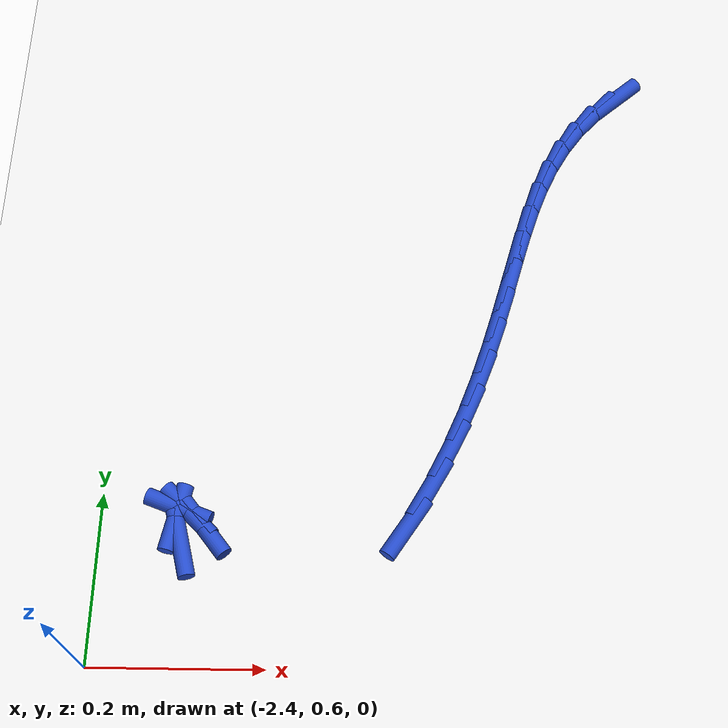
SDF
<sdf version="1.6">
 <world name="default">
  <model name="ground_plane">
   <static>1</static>
   <link name="link">
    <collision name="collision">
     <geometry><plane><normal>0 0 1</normal><size>100 100</size></plane></geometry>
     <surface><friction><ode><mu>100</mu><mu2>50</mu2></ode></friction></surface>
    </collision>
    <visual name="visual">
     <cast_shadows>0</cast_shadows>
     <geometry><plane><normal>0 0 1</normal><size>100 100</size></plane></geometry>
     <material>
      <script><uri>file://media/materials/scripts/gazebo.material</uri><name>Gazebo/WhiteGlow</name></script>
     </material>
    </visual>
   </link>
  </model>
  <model name="line">
   <link name="link_84">
    <pose>-1.7761245141381952 1.3592706370469525 0.01 0 1.57 0.7127917252627441</pose>
    <collision name="collision">
     <geometry><cylinder><radius>0.01</radius><length>0.08</length></cylinder></geometry>
    </collision>
    <visual name="visual">
     <material>
      <script><name>Gazebo/Blue</name><uri>file://media/materials/scripts/gazebo.material</uri></script>
     </material>
     <geometry><cylinder><radius>0.01</radius><length>0.08</length></cylinder></geometry>
    </visual>
   </link>
   <link name="link_85">
    <pose>-1.8041716083683887 1.3350268809052623 0.01 0 1.57 0.8358842722831661</pose>
    <collision name="collision">
     <geometry><cylinder><radius>0.01</radius><length>0.08</length></cylinder></geometry>
    </collision>
    <visual name="visual">
     <material>
      <script><name>Gazebo/Blue</name><uri>file://media/materials/scripts/gazebo.material</uri></script>
     </material>
     <geometry><cylinder><radius>0.01</radius><length>0.08</length></cylinder></geometry>
    </visual>
   </link>
   <link name="link_86">
    <pose>-1.8279495651309479 1.3087180884654763 0.01 0 1.57 0.953146820202422</pose>
    <collision name="collision">
     <geometry><cylinder><radius>0.01</radius><length>0.08</length></cylinder></geometry>
    </collision>
    <visual name="visual">
     <material>
      <script><name>Gazebo/Blue</name><uri>file://media/materials/scripts/gazebo.material</uri></script>
     </material>
     <geometry><cylinder><radius>0.01</radius><length>0.08</length></cylinder></geometry>
    </visual>
   </link>
   <link name="link_87">
    <pose>-1.8480587753543565 1.2804098691691266 0.01 0 1.57 1.0576609260138956</pose>
    <collision name="collision">
     <geometry><cylinder><radius>0.01</radius><length>0.08</length></cylinder></geometry>
    </collision>
    <visual name="visual">
     <material>
      <script><name>Gazebo/Blue</name><uri>file://media/materials/scripts/gazebo.material</uri></script>
     </material>
     <geometry><cylinder><radius>0.01</radius><length>0.08</length></cylinder></geometry>
    </visual>
   </link>
   <link name="link_88">
    <pose>-1.8650996299671 1.2501678324577463 0.01 0 1.57 1.1447542538550988</pose>
    <collision name="collision">
     <geometry><cylinder><radius>0.01</radius><length>0.08</length></cylinder></geometry>
    </collision>
    <visual name="visual">
     <material>
      <script><name>Gazebo/Blue</name><uri>file://media/materials/scripts/gazebo.material</uri></script>
     </material>
     <geometry><cylinder><radius>0.01</radius><length>0.08</length></cylinder></geometry>
    </visual>
   </link>
   <link name="link_89">
    <pose>-1.8796725198976636 1.218057587772867 0.01 0 1.57 1.212335916486929</pose>
    <collision name="collision">
     <geometry><cylinder><radius>0.01</radius><length>0.08</length></cylinder></geometry>
    </collision>
    <visual name="visual">
     <material>
      <script><name>Gazebo/Blue</name><uri>file://media/materials/scripts/gazebo.material</uri></script>
     </material>
     <geometry><cylinder><radius>0.01</radius><length>0.08</length></cylinder></geometry>
    </visual>
   </link>
   <link name="link_90">
    <pose>-1.8923778360745316 1.1841447445560216 0.01 0 1.57 1.26032546109926</pose>
    <collision name="collision">
     <geometry><cylinder><radius>0.01</radius><length>0.08</length></cylinder></geometry>
    </collision>
    <visual name="visual">
     <material>
      <script><name>Gazebo/Blue</name><uri>file://media/materials/scripts/gazebo.material</uri></script>
     </material>
     <geometry><cylinder><radius>0.01</radius><length>0.08</length></cylinder></geometry>
    </visual>
   </link>
   <link name="link_91">
    <pose>-1.903815969426188 1.1484949122487422 0.01 0 1.57 1.2898199064420177</pose>
    <collision name="collision">
     <geometry><cylinder><radius>0.01</radius><length>0.08</length></cylinder></geometry>
    </collision>
    <visual name="visual">
     <material>
      <script><name>Gazebo/Blue</name><uri>file://media/materials/scripts/gazebo.material</uri></script>
     </material>
     <geometry><cylinder><radius>0.01</radius><length>0.08</length></cylinder></geometry>
    </visual>
   </link>
   <link name="link_92">
    <pose>-1.9145873108811189 1.1111737002925617 0.01 0 1.57 1.3024296288743384</pose>
    <collision name="collision">
     <geometry><cylinder><radius>0.01</radius><length>0.08</length></cylinder></geometry>
    </collision>
    <visual name="visual">
     <material>
      <script><name>Gazebo/Blue</name><uri>file://media/materials/scripts/gazebo.material</uri></script>
     </material>
     <geometry><cylinder><radius>0.01</radius><length>0.08</length></cylinder></geometry>
    </visual>
   </link>
   <link name="link_93">
    <pose>-1.925292251367808 1.0722467181290123 0.01 0 1.57 1.2998940424243672</pose>
    <collision name="collision">
     <geometry><cylinder><radius>0.01</radius><length>0.08</length></cylinder></geometry>
    </collision>
    <visual name="visual">
     <material>
      <script><name>Gazebo/Blue</name><uri>file://media/materials/scripts/gazebo.material</uri></script>
     </material>
     <geometry><cylinder><radius>0.01</radius><length>0.08</length></cylinder></geometry>
    </visual>
   </link>
   <link name="link_94">
    <pose>-1.93653118181474 1.0317795751996262 0.01 0 1.57 1.2839217574786295</pose>
    <collision name="collision">
     <geometry><cylinder><radius>0.01</radius><length>0.08</length></cylinder></geometry>
    </collision>
    <visual name="visual">
     <material>
      <script><name>Gazebo/Blue</name><uri>file://media/materials/scripts/gazebo.material</uri></script>
     </material>
     <geometry><cylinder><radius>0.01</radius><length>0.08</length></cylinder></geometry>
    </visual>
   </link>
   <link name="link_95">
    <pose>-1.9489044931504005 0.9898378809459364 0.01 0 1.57 1.256165426917684</pose>
    <collision name="collision">
     <geometry><cylinder><radius>0.01</radius><length>0.08</length></cylinder></geometry>
    </collision>
    <visual name="visual">
     <material>
      <script><name>Gazebo/Blue</name><uri>file://media/materials/scripts/gazebo.material</uri></script>
     </material>
     <geometry><cylinder><radius>0.01</radius><length>0.08</length></cylinder></geometry>
    </visual>
   </link>
   <link name="link_96">
    <pose>-1.9630125763032737 0.946487244809475 0.01 0 1.57 1.2182581979249827</pose>
    <collision name="collision">
     <geometry><cylinder><radius>0.01</radius><length>0.08</length></cylinder></geometry>
    </collision>
    <visual name="visual">
     <material>
      <script><name>Gazebo/Blue</name><uri>file://media/materials/scripts/gazebo.material</uri></script>
     </material>
     <geometry><cylinder><radius>0.01</radius><length>0.08</length></cylinder></geometry>
    </visual>
   </link>
   <link name="link_97">
    <pose>-1.9794558222018446 0.9017932762317744 0.01 0 1.57 1.1718619586069094</pose>
    <collision name="collision">
     <geometry><cylinder><radius>0.01</radius><length>0.08</length></cylinder></geometry>
    </collision>
    <visual name="visual">
     <material>
      <script><name>Gazebo/Blue</name><uri>file://media/materials/scripts/gazebo.material</uri></script>
     </material>
     <geometry><cylinder><radius>0.01</radius><length>0.08</length></cylinder></geometry>
    </visual>
   </link>
   <link name="link_98">
    <pose>-1.9988346217745967 0.8558215846543671 0.01 0 1.57 1.1187044486329565</pose>
    <collision name="collision">
     <geometry><cylinder><radius>0.01</radius><length>0.08</length></cylinder></geometry>
    </collision>
    <visual name="visual">
     <material>
      <script><name>Gazebo/Blue</name><uri>file://media/materials/scripts/gazebo.material</uri></script>
     </material>
     <geometry><cylinder><radius>0.01</radius><length>0.08</length></cylinder></geometry>
    </visual>
   </link>
   <link name="link_99">
    <pose>-2.0217425648984944 0.8086507327329941 0.01 0 1.57 1.0599600989537292</pose>
    <collision name="collision">
     <geometry><cylinder><radius>0.01</radius><length>0.08</length></cylinder></geometry>
    </collision>
    <visual name="visual">
     <material>
      <script><name>Gazebo/Blue</name><uri>file://media/materials/scripts/gazebo.material</uri></script>
     </material>
     <geometry><cylinder><radius>0.01</radius><length>0.08</length></cylinder></geometry>
    </visual>
   </link>
   <link name="link_100">
    <pose>-2.048260064035391 0.7613366756579353 0.01 0 1.57 0.990474847934932</pose>
    <collision name="collision">
     <geometry><cylinder><radius>0.01</radius><length>0.08</length></cylinder></geometry>
    </collision>
    <visual name="visual">
     <material>
      <script><name>Gazebo/Blue</name><uri>file://media/materials/scripts/gazebo.material</uri></script>
     </material>
     <geometry><cylinder><radius>0.01</radius><length>0.08</length></cylinder></geometry>
    </visual>
   </link>
   <link name="link_109">
    <pose>-2.3046673052160696 0.7391199559105214 0.01 0 1.57 -1.3161538878058991</pose>
    <collision name="collision">
     <geometry><cylinder><radius>0.01</radius><length>0.08</length></cylinder></geometry>
    </collision>
    <visual name="visual">
     <material>
      <script><name>Gazebo/Blue</name><uri>file://media/materials/scripts/gazebo.material</uri></script>
     </material>
     <geometry><cylinder><radius>0.01</radius><length>0.08</length></cylinder></geometry>
    </visual>
   </link>
   <link name="link_110">
    <pose>-2.31244161731842 0.7689875036812233 0.01 0 1.57 1.361922603999839</pose>
    <collision name="collision">
     <geometry><cylinder><radius>0.01</radius><length>0.08</length></cylinder></geometry>
    </collision>
    <visual name="visual">
     <material>
      <script><name>Gazebo/Blue</name><uri>file://media/materials/scripts/gazebo.material</uri></script>
     </material>
     <geometry><cylinder><radius>0.01</radius><length>0.08</length></cylinder></geometry>
    </visual>
   </link>
   <link name="link_111">
    <pose>-2.309822173044558 0.7813453966290737 0.01 0 1.57 -0.3602148992698013</pose>
    <collision name="collision">
     <geometry><cylinder><radius>0.01</radius><length>0.08</length></cylinder></geometry>
    </collision>
    <visual name="visual">
     <material>
      <script><name>Gazebo/Blue</name><uri>file://media/materials/scripts/gazebo.material</uri></script>
     </material>
     <geometry><cylinder><radius>0.01</radius><length>0.08</length></cylinder></geometry>
    </visual>
   </link>
   <link name="link_112">
    <pose>-2.2980387212217908 0.7769071805040371 0.01 0 1.57 -0.776331373330972</pose>
    <collision name="collision">
     <geometry><cylinder><radius>0.01</radius><length>0.08</length></cylinder></geometry>
    </collision>
    <visual name="visual">
     <material>
      <script><name>Gazebo/Blue</name><uri>file://media/materials/scripts/gazebo.material</uri></script>
     </material>
     <geometry><cylinder><radius>0.01</radius><length>0.08</length></cylinder></geometry>
    </visual>
   </link>
   <link name="link_113">
    <pose>-2.2788553874211512 0.7580685929292984 0.01 0 1.57 -0.8932049508619009</pose>
    <collision name="collision">
     <geometry><cylinder><radius>0.01</radius><length>0.08</length></cylinder></geometry>
    </collision>
    <visual name="visual">
     <material>
      <script><name>Gazebo/Blue</name><uri>file://media/materials/scripts/gazebo.material</uri></script>
     </material>
     <geometry><cylinder><radius>0.01</radius><length>0.08</length></cylinder></geometry>
    </visual>
   </link>
  </model>
 </world>
</sdf>
